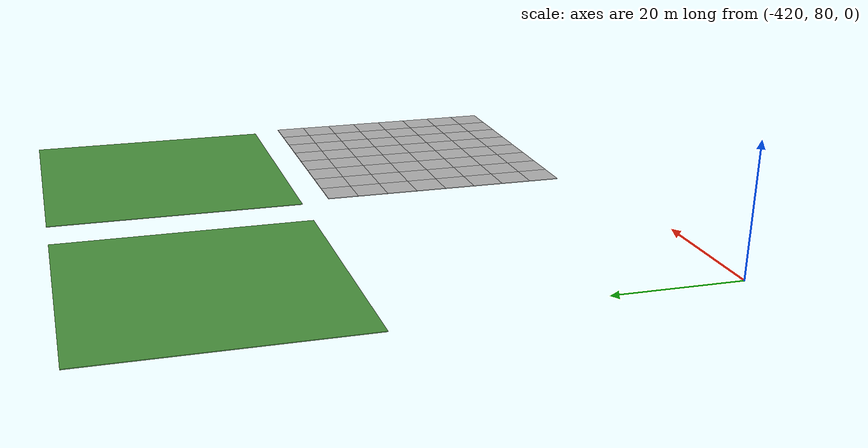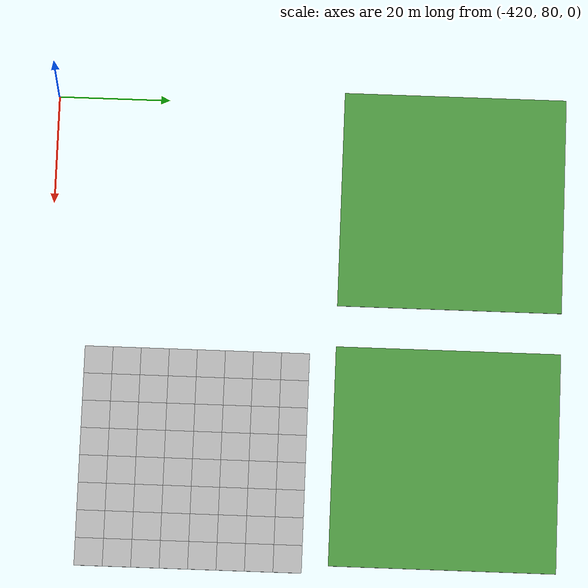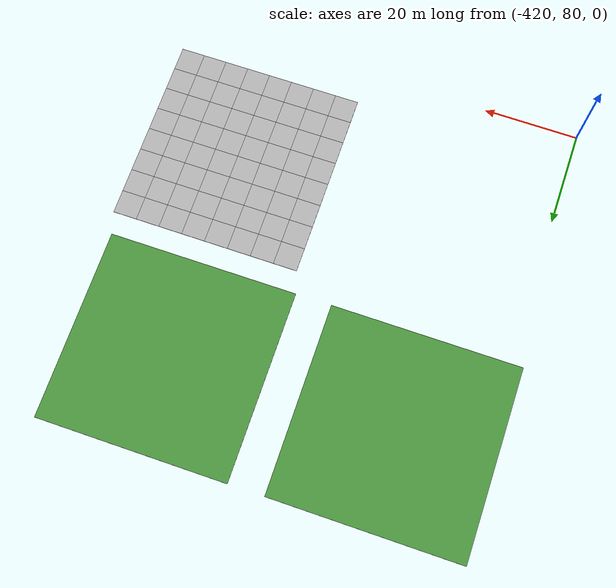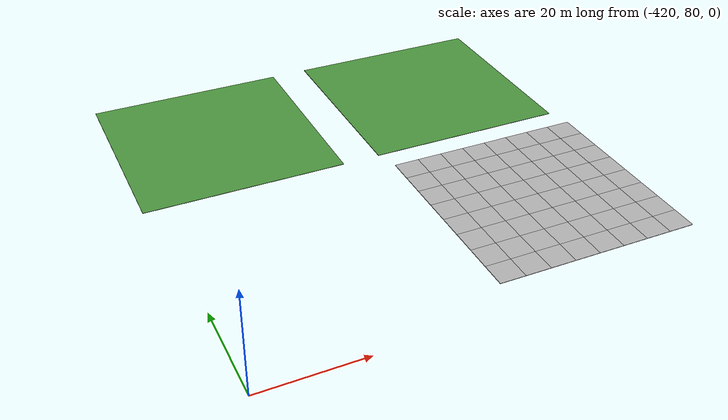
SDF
<sdf version="1.7">
 <world name="default">
  <model name="mud_plane_40x40_19">
   <model name="mud_plane_20x20">
    <model name="mud_plane">
     <static>1</static>
     <link name="link">
      <collision name="collision"><geometry><box><size>10 10 0.1</size></box></geometry></collision>
      <visual name="visual_1">
       <pose>-2.5 2.5 -0.05 0 -0 0</pose>
       <cast_shadows>0</cast_shadows>
       <geometry><box><size>5 5 0.1</size></box></geometry>
       <material>
        <script>
         <uri>model://mud_plane/materials/scripts</uri>
         <uri>model://mud_plane/materials/textures</uri>
         <name>vrc/mud</name>
        </script>
       </material>
      </visual>
      <visual name="visual_2">
       <pose>2.5 2.5 -0.05 0 -0 0</pose>
       <cast_shadows>0</cast_shadows>
       <geometry><box><size>5 5 0.1</size></box></geometry>
       <material>
        <script>
         <uri>model://mud_plane/materials/scripts</uri>
         <uri>model://mud_plane/materials/textures</uri>
         <name>vrc/mud</name>
        </script>
       </material>
      </visual>
      <visual name="visual_3">
       <pose>2.5 -2.5 -0.05 0 -0 0</pose>
       <cast_shadows>0</cast_shadows>
       <geometry><box><size>5 5 0.1</size></box></geometry>
       <material>
        <script>
         <uri>model://mud_plane/materials/scripts</uri>
         <uri>model://mud_plane/materials/textures</uri>
         <name>vrc/mud</name>
        </script>
       </material>
      </visual>
      <visual name="visual_4">
       <pose>-2.5 -2.5 -0.05 0 -0 0</pose>
       <cast_shadows>0</cast_shadows>
       <geometry><box><size>5 5 0.1</size></box></geometry>
       <material>
        <script>
         <uri>model://mud_plane/materials/scripts</uri>
         <uri>model://mud_plane/materials/textures</uri>
         <name>vrc/mud</name>
        </script>
       </material>
      </visual>
     </link>
     <pose>-4.99986 -4.99991 0 0 -0 0</pose>
    </model>
    <model name="mud_plane_0">
     <static>1</static>
     <link name="link">
      <collision name="collision"><geometry><box><size>10 10 0.1</size></box></geometry></collision>
      <visual name="visual_1">
       <pose>-2.5 2.5 -0.05 0 -0 0</pose>
       <cast_shadows>0</cast_shadows>
       <geometry><box><size>5 5 0.1</size></box></geometry>
       <material>
        <script>
         <uri>model://mud_plane/materials/scripts</uri>
         <uri>model://mud_plane/materials/textures</uri>
         <name>vrc/mud</name>
        </script>
       </material>
      </visual>
      <visual name="visual_2">
       <pose>2.5 2.5 -0.05 0 -0 0</pose>
       <cast_shadows>0</cast_shadows>
       <geometry><box><size>5 5 0.1</size></box></geometry>
       <material>
        <script>
         <uri>model://mud_plane/materials/scripts</uri>
         <uri>model://mud_plane/materials/textures</uri>
         <name>vrc/mud</name>
        </script>
       </material>
      </visual>
      <visual name="visual_3">
       <pose>2.5 -2.5 -0.05 0 -0 0</pose>
       <cast_shadows>0</cast_shadows>
       <geometry><box><size>5 5 0.1</size></box></geometry>
       <material>
        <script>
         <uri>model://mud_plane/materials/scripts</uri>
         <uri>model://mud_plane/materials/textures</uri>
         <name>vrc/mud</name>
        </script>
       </material>
      </visual>
      <visual name="visual_4">
       <pose>-2.5 -2.5 -0.05 0 -0 0</pose>
       <cast_shadows>0</cast_shadows>
       <geometry><box><size>5 5 0.1</size></box></geometry>
       <material>
        <script>
         <uri>model://mud_plane/materials/scripts</uri>
         <uri>model://mud_plane/materials/textures</uri>
         <name>vrc/mud</name>
        </script>
       </material>
      </visual>
     </link>
     <pose>-4.99946 4.99954 0 0 -0 0</pose>
    </model>
    <model name="mud_plane_1">
     <static>1</static>
     <link name="link">
      <collision name="collision"><geometry><box><size>10 10 0.1</size></box></geometry></collision>
      <visual name="visual_1">
       <pose>-2.5 2.5 -0.05 0 -0 0</pose>
       <cast_shadows>0</cast_shadows>
       <geometry><box><size>5 5 0.1</size></box></geometry>
       <material>
        <script>
         <uri>model://mud_plane/materials/scripts</uri>
         <uri>model://mud_plane/materials/textures</uri>
         <name>vrc/mud</name>
        </script>
       </material>
      </visual>
      <visual name="visual_2">
       <pose>2.5 2.5 -0.05 0 -0 0</pose>
       <cast_shadows>0</cast_shadows>
       <geometry><box><size>5 5 0.1</size></box></geometry>
       <material>
        <script>
         <uri>model://mud_plane/materials/scripts</uri>
         <uri>model://mud_plane/materials/textures</uri>
         <name>vrc/mud</name>
        </script>
       </material>
      </visual>
      <visual name="visual_3">
       <pose>2.5 -2.5 -0.05 0 -0 0</pose>
       <cast_shadows>0</cast_shadows>
       <geometry><box><size>5 5 0.1</size></box></geometry>
       <material>
        <script>
         <uri>model://mud_plane/materials/scripts</uri>
         <uri>model://mud_plane/materials/textures</uri>
         <name>vrc/mud</name>
        </script>
       </material>
      </visual>
      <visual name="visual_4">
       <pose>-2.5 -2.5 -0.05 0 -0 0</pose>
       <cast_shadows>0</cast_shadows>
       <geometry><box><size>5 5 0.1</size></box></geometry>
       <material>
        <script>
         <uri>model://mud_plane/materials/scripts</uri>
         <uri>model://mud_plane/materials/textures</uri>
         <name>vrc/mud</name>
        </script>
       </material>
      </visual>
     </link>
     <pose>4.99964 -4.99949 0 0 -0 0</pose>
    </model>
    <model name="mud_plane_2">
     <static>1</static>
     <link name="link">
      <collision name="collision"><geometry><box><size>10 10 0.1</size></box></geometry></collision>
      <visual name="visual_1">
       <pose>-2.5 2.5 -0.05 0 -0 0</pose>
       <cast_shadows>0</cast_shadows>
       <geometry><box><size>5 5 0.1</size></box></geometry>
       <material>
        <script>
         <uri>model://mud_plane/materials/scripts</uri>
         <uri>model://mud_plane/materials/textures</uri>
         <name>vrc/mud</name>
        </script>
       </material>
      </visual>
      <visual name="visual_2">
       <pose>2.5 2.5 -0.05 0 -0 0</pose>
       <cast_shadows>0</cast_shadows>
       <geometry><box><size>5 5 0.1</size></box></geometry>
       <material>
        <script>
         <uri>model://mud_plane/materials/scripts</uri>
         <uri>model://mud_plane/materials/textures</uri>
         <name>vrc/mud</name>
        </script>
       </material>
      </visual>
      <visual name="visual_3">
       <pose>2.5 -2.5 -0.05 0 -0 0</pose>
       <cast_shadows>0</cast_shadows>
       <geometry><box><size>5 5 0.1</size></box></geometry>
       <material>
        <script>
         <uri>model://mud_plane/materials/scripts</uri>
         <uri>model://mud_plane/materials/textures</uri>
         <name>vrc/mud</name>
        </script>
       </material>
      </visual>
      <visual name="visual_4">
       <pose>-2.5 -2.5 -0.05 0 -0 0</pose>
       <cast_shadows>0</cast_shadows>
       <geometry><box><size>5 5 0.1</size></box></geometry>
       <material>
        <script>
         <uri>model://mud_plane/materials/scripts</uri>
         <uri>model://mud_plane/materials/textures</uri>
         <name>vrc/mud</name>
        </script>
       </material>
      </visual>
     </link>
     <pose>4.99967 4.99986 0 0 -0 0</pose>
    </model>
    <static>0</static>
    <pose>-9.99895 9.99843 0 0 -0 0</pose>
   </model>
   <model name="mud_plane_20x20_0">
    <model name="mud_plane">
     <static>1</static>
     <link name="link">
      <collision name="collision"><geometry><box><size>10 10 0.1</size></box></geometry></collision>
      <visual name="visual_1">
       <pose>-2.5 2.5 -0.05 0 -0 0</pose>
       <cast_shadows>0</cast_shadows>
       <geometry><box><size>5 5 0.1</size></box></geometry>
       <material>
        <script>
         <uri>model://mud_plane/materials/scripts</uri>
         <uri>model://mud_plane/materials/textures</uri>
         <name>vrc/mud</name>
        </script>
       </material>
      </visual>
      <visual name="visual_2">
       <pose>2.5 2.5 -0.05 0 -0 0</pose>
       <cast_shadows>0</cast_shadows>
       <geometry><box><size>5 5 0.1</size></box></geometry>
       <material>
        <script>
         <uri>model://mud_plane/materials/scripts</uri>
         <uri>model://mud_plane/materials/textures</uri>
         <name>vrc/mud</name>
        </script>
       </material>
      </visual>
      <visual name="visual_3">
       <pose>2.5 -2.5 -0.05 0 -0 0</pose>
       <cast_shadows>0</cast_shadows>
       <geometry><box><size>5 5 0.1</size></box></geometry>
       <material>
        <script>
         <uri>model://mud_plane/materials/scripts</uri>
         <uri>model://mud_plane/materials/textures</uri>
         <name>vrc/mud</name>
        </script>
       </material>
      </visual>
      <visual name="visual_4">
       <pose>-2.5 -2.5 -0.05 0 -0 0</pose>
       <cast_shadows>0</cast_shadows>
       <geometry><box><size>5 5 0.1</size></box></geometry>
       <material>
        <script>
         <uri>model://mud_plane/materials/scripts</uri>
         <uri>model://mud_plane/materials/textures</uri>
         <name>vrc/mud</name>
        </script>
       </material>
      </visual>
     </link>
     <pose>-4.99986 -4.99991 0 0 -0 0</pose>
    </model>
    <model name="mud_plane_0">
     <static>1</static>
     <link name="link">
      <collision name="collision"><geometry><box><size>10 10 0.1</size></box></geometry></collision>
      <visual name="visual_1">
       <pose>-2.5 2.5 -0.05 0 -0 0</pose>
       <cast_shadows>0</cast_shadows>
       <geometry><box><size>5 5 0.1</size></box></geometry>
       <material>
        <script>
         <uri>model://mud_plane/materials/scripts</uri>
         <uri>model://mud_plane/materials/textures</uri>
         <name>vrc/mud</name>
        </script>
       </material>
      </visual>
      <visual name="visual_2">
       <pose>2.5 2.5 -0.05 0 -0 0</pose>
       <cast_shadows>0</cast_shadows>
       <geometry><box><size>5 5 0.1</size></box></geometry>
       <material>
        <script>
         <uri>model://mud_plane/materials/scripts</uri>
         <uri>model://mud_plane/materials/textures</uri>
         <name>vrc/mud</name>
        </script>
       </material>
      </visual>
      <visual name="visual_3">
       <pose>2.5 -2.5 -0.05 0 -0 0</pose>
       <cast_shadows>0</cast_shadows>
       <geometry><box><size>5 5 0.1</size></box></geometry>
       <material>
        <script>
         <uri>model://mud_plane/materials/scripts</uri>
         <uri>model://mud_plane/materials/textures</uri>
         <name>vrc/mud</name>
        </script>
       </material>
      </visual>
      <visual name="visual_4">
       <pose>-2.5 -2.5 -0.05 0 -0 0</pose>
       <cast_shadows>0</cast_shadows>
       <geometry><box><size>5 5 0.1</size></box></geometry>
       <material>
        <script>
         <uri>model://mud_plane/materials/scripts</uri>
         <uri>model://mud_plane/materials/textures</uri>
         <name>vrc/mud</name>
        </script>
       </material>
      </visual>
     </link>
     <pose>-4.99946 4.99954 0 0 -0 0</pose>
    </model>
    <model name="mud_plane_1">
     <static>1</static>
     <link name="link">
      <collision name="collision"><geometry><box><size>10 10 0.1</size></box></geometry></collision>
      <visual name="visual_1">
       <pose>-2.5 2.5 -0.05 0 -0 0</pose>
       <cast_shadows>0</cast_shadows>
       <geometry><box><size>5 5 0.1</size></box></geometry>
       <material>
        <script>
         <uri>model://mud_plane/materials/scripts</uri>
         <uri>model://mud_plane/materials/textures</uri>
         <name>vrc/mud</name>
        </script>
       </material>
      </visual>
      <visual name="visual_2">
       <pose>2.5 2.5 -0.05 0 -0 0</pose>
       <cast_shadows>0</cast_shadows>
       <geometry><box><size>5 5 0.1</size></box></geometry>
       <material>
        <script>
         <uri>model://mud_plane/materials/scripts</uri>
         <uri>model://mud_plane/materials/textures</uri>
         <name>vrc/mud</name>
        </script>
       </material>
      </visual>
      <visual name="visual_3">
       <pose>2.5 -2.5 -0.05 0 -0 0</pose>
       <cast_shadows>0</cast_shadows>
       <geometry><box><size>5 5 0.1</size></box></geometry>
       <material>
        <script>
         <uri>model://mud_plane/materials/scripts</uri>
         <uri>model://mud_plane/materials/textures</uri>
         <name>vrc/mud</name>
        </script>
       </material>
      </visual>
      <visual name="visual_4">
       <pose>-2.5 -2.5 -0.05 0 -0 0</pose>
       <cast_shadows>0</cast_shadows>
       <geometry><box><size>5 5 0.1</size></box></geometry>
       <material>
        <script>
         <uri>model://mud_plane/materials/scripts</uri>
         <uri>model://mud_plane/materials/textures</uri>
         <name>vrc/mud</name>
        </script>
       </material>
      </visual>
     </link>
     <pose>4.99964 -4.99949 0 0 -0 0</pose>
    </model>
    <model name="mud_plane_2">
     <static>1</static>
     <link name="link">
      <collision name="collision"><geometry><box><size>10 10 0.1</size></box></geometry></collision>
      <visual name="visual_1">
       <pose>-2.5 2.5 -0.05 0 -0 0</pose>
       <cast_shadows>0</cast_shadows>
       <geometry><box><size>5 5 0.1</size></box></geometry>
       <material>
        <script>
         <uri>model://mud_plane/materials/scripts</uri>
         <uri>model://mud_plane/materials/textures</uri>
         <name>vrc/mud</name>
        </script>
       </material>
      </visual>
      <visual name="visual_2">
       <pose>2.5 2.5 -0.05 0 -0 0</pose>
       <cast_shadows>0</cast_shadows>
       <geometry><box><size>5 5 0.1</size></box></geometry>
       <material>
        <script>
         <uri>model://mud_plane/materials/scripts</uri>
         <uri>model://mud_plane/materials/textures</uri>
         <name>vrc/mud</name>
        </script>
       </material>
      </visual>
      <visual name="visual_3">
       <pose>2.5 -2.5 -0.05 0 -0 0</pose>
       <cast_shadows>0</cast_shadows>
       <geometry><box><size>5 5 0.1</size></box></geometry>
       <material>
        <script>
         <uri>model://mud_plane/materials/scripts</uri>
         <uri>model://mud_plane/materials/textures</uri>
         <name>vrc/mud</name>
        </script>
       </material>
      </visual>
      <visual name="visual_4">
       <pose>-2.5 -2.5 -0.05 0 -0 0</pose>
       <cast_shadows>0</cast_shadows>
       <geometry><box><size>5 5 0.1</size></box></geometry>
       <material>
        <script>
         <uri>model://mud_plane/materials/scripts</uri>
         <uri>model://mud_plane/materials/textures</uri>
         <name>vrc/mud</name>
        </script>
       </material>
      </visual>
     </link>
     <pose>4.99967 4.99986 0 0 -0 0</pose>
    </model>
    <static>0</static>
    <pose>9.99933 9.9997 0 0 -0 0</pose>
   </model>
   <model name="mud_plane_20x20_1">
    <model name="mud_plane">
     <static>1</static>
     <link name="link">
      <collision name="collision"><geometry><box><size>10 10 0.1</size></box></geometry></collision>
      <visual name="visual_1">
       <pose>-2.5 2.5 -0.05 0 -0 0</pose>
       <cast_shadows>0</cast_shadows>
       <geometry><box><size>5 5 0.1</size></box></geometry>
       <material>
        <script>
         <uri>model://mud_plane/materials/scripts</uri>
         <uri>model://mud_plane/materials/textures</uri>
         <name>vrc/mud</name>
        </script>
       </material>
      </visual>
      <visual name="visual_2">
       <pose>2.5 2.5 -0.05 0 -0 0</pose>
       <cast_shadows>0</cast_shadows>
       <geometry><box><size>5 5 0.1</size></box></geometry>
       <material>
        <script>
         <uri>model://mud_plane/materials/scripts</uri>
         <uri>model://mud_plane/materials/textures</uri>
         <name>vrc/mud</name>
        </script>
       </material>
      </visual>
      <visual name="visual_3">
       <pose>2.5 -2.5 -0.05 0 -0 0</pose>
       <cast_shadows>0</cast_shadows>
       <geometry><box><size>5 5 0.1</size></box></geometry>
       <material>
        <script>
         <uri>model://mud_plane/materials/scripts</uri>
         <uri>model://mud_plane/materials/textures</uri>
         <name>vrc/mud</name>
        </script>
       </material>
      </visual>
      <visual name="visual_4">
       <pose>-2.5 -2.5 -0.05 0 -0 0</pose>
       <cast_shadows>0</cast_shadows>
       <geometry><box><size>5 5 0.1</size></box></geometry>
       <material>
        <script>
         <uri>model://mud_plane/materials/scripts</uri>
         <uri>model://mud_plane/materials/textures</uri>
         <name>vrc/mud</name>
        </script>
       </material>
      </visual>
     </link>
     <pose>-4.99986 -4.99991 0 0 -0 0</pose>
    </model>
    <model name="mud_plane_0">
     <static>1</static>
     <link name="link">
      <collision name="collision"><geometry><box><size>10 10 0.1</size></box></geometry></collision>
      <visual name="visual_1">
       <pose>-2.5 2.5 -0.05 0 -0 0</pose>
       <cast_shadows>0</cast_shadows>
       <geometry><box><size>5 5 0.1</size></box></geometry>
       <material>
        <script>
         <uri>model://mud_plane/materials/scripts</uri>
         <uri>model://mud_plane/materials/textures</uri>
         <name>vrc/mud</name>
        </script>
       </material>
      </visual>
      <visual name="visual_2">
       <pose>2.5 2.5 -0.05 0 -0 0</pose>
       <cast_shadows>0</cast_shadows>
       <geometry><box><size>5 5 0.1</size></box></geometry>
       <material>
        <script>
         <uri>model://mud_plane/materials/scripts</uri>
         <uri>model://mud_plane/materials/textures</uri>
         <name>vrc/mud</name>
        </script>
       </material>
      </visual>
      <visual name="visual_3">
       <pose>2.5 -2.5 -0.05 0 -0 0</pose>
       <cast_shadows>0</cast_shadows>
       <geometry><box><size>5 5 0.1</size></box></geometry>
       <material>
        <script>
         <uri>model://mud_plane/materials/scripts</uri>
         <uri>model://mud_plane/materials/textures</uri>
         <name>vrc/mud</name>
        </script>
       </material>
      </visual>
      <visual name="visual_4">
       <pose>-2.5 -2.5 -0.05 0 -0 0</pose>
       <cast_shadows>0</cast_shadows>
       <geometry><box><size>5 5 0.1</size></box></geometry>
       <material>
        <script>
         <uri>model://mud_plane/materials/scripts</uri>
         <uri>model://mud_plane/materials/textures</uri>
         <name>vrc/mud</name>
        </script>
       </material>
      </visual>
     </link>
     <pose>-4.99946 4.99954 0 0 -0 0</pose>
    </model>
    <model name="mud_plane_1">
     <static>1</static>
     <link name="link">
      <collision name="collision"><geometry><box><size>10 10 0.1</size></box></geometry></collision>
      <visual name="visual_1">
       <pose>-2.5 2.5 -0.05 0 -0 0</pose>
       <cast_shadows>0</cast_shadows>
       <geometry><box><size>5 5 0.1</size></box></geometry>
       <material>
        <script>
         <uri>model://mud_plane/materials/scripts</uri>
         <uri>model://mud_plane/materials/textures</uri>
         <name>vrc/mud</name>
        </script>
       </material>
      </visual>
      <visual name="visual_2">
       <pose>2.5 2.5 -0.05 0 -0 0</pose>
       <cast_shadows>0</cast_shadows>
       <geometry><box><size>5 5 0.1</size></box></geometry>
       <material>
        <script>
         <uri>model://mud_plane/materials/scripts</uri>
         <uri>model://mud_plane/materials/textures</uri>
         <name>vrc/mud</name>
        </script>
       </material>
      </visual>
      <visual name="visual_3">
       <pose>2.5 -2.5 -0.05 0 -0 0</pose>
       <cast_shadows>0</cast_shadows>
       <geometry><box><size>5 5 0.1</size></box></geometry>
       <material>
        <script>
         <uri>model://mud_plane/materials/scripts</uri>
         <uri>model://mud_plane/materials/textures</uri>
         <name>vrc/mud</name>
        </script>
       </material>
      </visual>
      <visual name="visual_4">
       <pose>-2.5 -2.5 -0.05 0 -0 0</pose>
       <cast_shadows>0</cast_shadows>
       <geometry><box><size>5 5 0.1</size></box></geometry>
       <material>
        <script>
         <uri>model://mud_plane/materials/scripts</uri>
         <uri>model://mud_plane/materials/textures</uri>
         <name>vrc/mud</name>
        </script>
       </material>
      </visual>
     </link>
     <pose>4.99964 -4.99949 0 0 -0 0</pose>
    </model>
    <model name="mud_plane_2">
     <static>1</static>
     <link name="link">
      <collision name="collision"><geometry><box><size>10 10 0.1</size></box></geometry></collision>
      <visual name="visual_1">
       <pose>-2.5 2.5 -0.05 0 -0 0</pose>
       <cast_shadows>0</cast_shadows>
       <geometry><box><size>5 5 0.1</size></box></geometry>
       <material>
        <script>
         <uri>model://mud_plane/materials/scripts</uri>
         <uri>model://mud_plane/materials/textures</uri>
         <name>vrc/mud</name>
        </script>
       </material>
      </visual>
      <visual name="visual_2">
       <pose>2.5 2.5 -0.05 0 -0 0</pose>
       <cast_shadows>0</cast_shadows>
       <geometry><box><size>5 5 0.1</size></box></geometry>
       <material>
        <script>
         <uri>model://mud_plane/materials/scripts</uri>
         <uri>model://mud_plane/materials/textures</uri>
         <name>vrc/mud</name>
        </script>
       </material>
      </visual>
      <visual name="visual_3">
       <pose>2.5 -2.5 -0.05 0 -0 0</pose>
       <cast_shadows>0</cast_shadows>
       <geometry><box><size>5 5 0.1</size></box></geometry>
       <material>
        <script>
         <uri>model://mud_plane/materials/scripts</uri>
         <uri>model://mud_plane/materials/textures</uri>
         <name>vrc/mud</name>
        </script>
       </material>
      </visual>
      <visual name="visual_4">
       <pose>-2.5 -2.5 -0.05 0 -0 0</pose>
       <cast_shadows>0</cast_shadows>
       <geometry><box><size>5 5 0.1</size></box></geometry>
       <material>
        <script>
         <uri>model://mud_plane/materials/scripts</uri>
         <uri>model://mud_plane/materials/textures</uri>
         <name>vrc/mud</name>
        </script>
       </material>
      </visual>
     </link>
     <pose>4.99967 4.99986 0 0 -0 0</pose>
    </model>
    <static>0</static>
    <pose>9.9993 -9.99877 0 0 -0 0</pose>
   </model>
   <model name="mud_plane_20x20_2">
    <model name="mud_plane">
     <static>1</static>
     <link name="link">
      <collision name="collision"><geometry><box><size>10 10 0.1</size></box></geometry></collision>
      <visual name="visual_1">
       <pose>-2.5 2.5 -0.05 0 -0 0</pose>
       <cast_shadows>0</cast_shadows>
       <geometry><box><size>5 5 0.1</size></box></geometry>
       <material>
        <script>
         <uri>model://mud_plane/materials/scripts</uri>
         <uri>model://mud_plane/materials/textures</uri>
         <name>vrc/mud</name>
        </script>
       </material>
      </visual>
      <visual name="visual_2">
       <pose>2.5 2.5 -0.05 0 -0 0</pose>
       <cast_shadows>0</cast_shadows>
       <geometry><box><size>5 5 0.1</size></box></geometry>
       <material>
        <script>
         <uri>model://mud_plane/materials/scripts</uri>
         <uri>model://mud_plane/materials/textures</uri>
         <name>vrc/mud</name>
        </script>
       </material>
      </visual>
      <visual name="visual_3">
       <pose>2.5 -2.5 -0.05 0 -0 0</pose>
       <cast_shadows>0</cast_shadows>
       <geometry><box><size>5 5 0.1</size></box></geometry>
       <material>
        <script>
         <uri>model://mud_plane/materials/scripts</uri>
         <uri>model://mud_plane/materials/textures</uri>
         <name>vrc/mud</name>
        </script>
       </material>
      </visual>
      <visual name="visual_4">
       <pose>-2.5 -2.5 -0.05 0 -0 0</pose>
       <cast_shadows>0</cast_shadows>
       <geometry><box><size>5 5 0.1</size></box></geometry>
       <material>
        <script>
         <uri>model://mud_plane/materials/scripts</uri>
         <uri>model://mud_plane/materials/textures</uri>
         <name>vrc/mud</name>
        </script>
       </material>
      </visual>
     </link>
     <pose>-4.99986 -4.99991 0 0 -0 0</pose>
    </model>
    <model name="mud_plane_0">
     <static>1</static>
     <link name="link">
      <collision name="collision"><geometry><box><size>10 10 0.1</size></box></geometry></collision>
      <visual name="visual_1">
       <pose>-2.5 2.5 -0.05 0 -0 0</pose>
       <cast_shadows>0</cast_shadows>
       <geometry><box><size>5 5 0.1</size></box></geometry>
       <material>
        <script>
         <uri>model://mud_plane/materials/scripts</uri>
         <uri>model://mud_plane/materials/textures</uri>
         <name>vrc/mud</name>
        </script>
       </material>
      </visual>
      <visual name="visual_2">
       <pose>2.5 2.5 -0.05 0 -0 0</pose>
       <cast_shadows>0</cast_shadows>
       <geometry><box><size>5 5 0.1</size></box></geometry>
       <material>
        <script>
         <uri>model://mud_plane/materials/scripts</uri>
         <uri>model://mud_plane/materials/textures</uri>
         <name>vrc/mud</name>
        </script>
       </material>
      </visual>
      <visual name="visual_3">
       <pose>2.5 -2.5 -0.05 0 -0 0</pose>
       <cast_shadows>0</cast_shadows>
       <geometry><box><size>5 5 0.1</size></box></geometry>
       <material>
        <script>
         <uri>model://mud_plane/materials/scripts</uri>
         <uri>model://mud_plane/materials/textures</uri>
         <name>vrc/mud</name>
        </script>
       </material>
      </visual>
      <visual name="visual_4">
       <pose>-2.5 -2.5 -0.05 0 -0 0</pose>
       <cast_shadows>0</cast_shadows>
       <geometry><box><size>5 5 0.1</size></box></geometry>
       <material>
        <script>
         <uri>model://mud_plane/materials/scripts</uri>
         <uri>model://mud_plane/materials/textures</uri>
         <name>vrc/mud</name>
        </script>
       </material>
      </visual>
     </link>
     <pose>-4.99946 4.99954 0 0 -0 0</pose>
    </model>
    <model name="mud_plane_1">
     <static>1</static>
     <link name="link">
      <collision name="collision"><geometry><box><size>10 10 0.1</size></box></geometry></collision>
      <visual name="visual_1">
       <pose>-2.5 2.5 -0.05 0 -0 0</pose>
       <cast_shadows>0</cast_shadows>
       <geometry><box><size>5 5 0.1</size></box></geometry>
       <material>
        <script>
         <uri>model://mud_plane/materials/scripts</uri>
         <uri>model://mud_plane/materials/textures</uri>
         <name>vrc/mud</name>
        </script>
       </material>
      </visual>
      <visual name="visual_2">
       <pose>2.5 2.5 -0.05 0 -0 0</pose>
       <cast_shadows>0</cast_shadows>
       <geometry><box><size>5 5 0.1</size></box></geometry>
       <material>
        <script>
         <uri>model://mud_plane/materials/scripts</uri>
         <uri>model://mud_plane/materials/textures</uri>
         <name>vrc/mud</name>
        </script>
       </material>
      </visual>
      <visual name="visual_3">
       <pose>2.5 -2.5 -0.05 0 -0 0</pose>
       <cast_shadows>0</cast_shadows>
       <geometry><box><size>5 5 0.1</size></box></geometry>
       <material>
        <script>
         <uri>model://mud_plane/materials/scripts</uri>
         <uri>model://mud_plane/materials/textures</uri>
         <name>vrc/mud</name>
        </script>
       </material>
      </visual>
      <visual name="visual_4">
       <pose>-2.5 -2.5 -0.05 0 -0 0</pose>
       <cast_shadows>0</cast_shadows>
       <geometry><box><size>5 5 0.1</size></box></geometry>
       <material>
        <script>
         <uri>model://mud_plane/materials/scripts</uri>
         <uri>model://mud_plane/materials/textures</uri>
         <name>vrc/mud</name>
        </script>
       </material>
      </visual>
     </link>
     <pose>4.99964 -4.99949 0 0 -0 0</pose>
    </model>
    <model name="mud_plane_2">
     <static>1</static>
     <link name="link">
      <collision name="collision"><geometry><box><size>10 10 0.1</size></box></geometry></collision>
      <visual name="visual_1">
       <pose>-2.5 2.5 -0.05 0 -0 0</pose>
       <cast_shadows>0</cast_shadows>
       <geometry><box><size>5 5 0.1</size></box></geometry>
       <material>
        <script>
         <uri>model://mud_plane/materials/scripts</uri>
         <uri>model://mud_plane/materials/textures</uri>
         <name>vrc/mud</name>
        </script>
       </material>
      </visual>
      <visual name="visual_2">
       <pose>2.5 2.5 -0.05 0 -0 0</pose>
       <cast_shadows>0</cast_shadows>
       <geometry><box><size>5 5 0.1</size></box></geometry>
       <material>
        <script>
         <uri>model://mud_plane/materials/scripts</uri>
         <uri>model://mud_plane/materials/textures</uri>
         <name>vrc/mud</name>
        </script>
       </material>
      </visual>
      <visual name="visual_3">
       <pose>2.5 -2.5 -0.05 0 -0 0</pose>
       <cast_shadows>0</cast_shadows>
       <geometry><box><size>5 5 0.1</size></box></geometry>
       <material>
        <script>
         <uri>model://mud_plane/materials/scripts</uri>
         <uri>model://mud_plane/materials/textures</uri>
         <name>vrc/mud</name>
        </script>
       </material>
      </visual>
      <visual name="visual_4">
       <pose>-2.5 -2.5 -0.05 0 -0 0</pose>
       <cast_shadows>0</cast_shadows>
       <geometry><box><size>5 5 0.1</size></box></geometry>
       <material>
        <script>
         <uri>model://mud_plane/materials/scripts</uri>
         <uri>model://mud_plane/materials/textures</uri>
         <name>vrc/mud</name>
        </script>
       </material>
      </visual>
     </link>
     <pose>4.99967 4.99986 0 0 -0 0</pose>
    </model>
    <static>0</static>
    <pose>-9.99969 -9.99935 0 0 -0 0</pose>
   </model>
   <static>0</static>
   <pose>-353.616 106.87 0 0 -0 0</pose>
  </model>
  <model name="grass_plane_40x40_17">
   <pose>-355.077 151.528 -0.05 0 -0 0</pose>
   <static>1</static>
   <link name="link">
    <collision name="collision"><geometry><box><size>40 40 0.1</size></box></geometry></collision>
    <visual name="grass">
     <cast_shadows>0</cast_shadows>
     <geometry><box><size>40 40 0.1</size></box></geometry>
     <material>
      <script><uri>file://media/materials/scripts/gazebo.material</uri><name>Gazebo/Grass</name></script>
     </material>
    </visual>
   </link>
  </model>
  <model name="grass_plane_40x40_18">
   <pose>-402.611 151.476 -0.05 0 -0 0</pose>
   <static>1</static>
   <link name="link">
    <collision name="collision"><geometry><box><size>40 40 0.1</size></box></geometry></collision>
    <visual name="grass">
     <cast_shadows>0</cast_shadows>
     <geometry><box><size>40 40 0.1</size></box></geometry>
     <material>
      <script><uri>file://media/materials/scripts/gazebo.material</uri><name>Gazebo/Grass</name></script>
     </material>
    </visual>
   </link>
  </model>
 </world>
</sdf>
